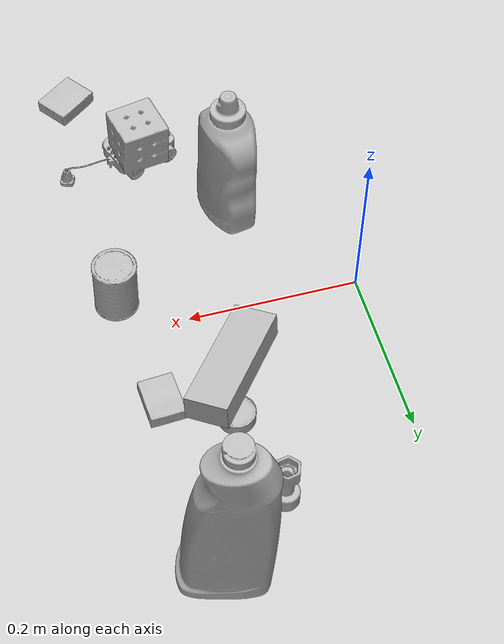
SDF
<sdf version="1.4">
  <world name="default">
    <light name="light1" type="point">
      <pose>0 0 1 0 0 0</pose>
      <diffuse>3 3 3 1</diffuse>
      <specular>3 3 3 1</specular>
    </light>
    <light name="light2" type="point">
      <pose>0 0.5 2 0 0 0</pose>
      <diffuse>1 1 1 1</diffuse>
      <specular>1 1 1 1</specular>
    </light>
    <light name="light3" type="point">
      <pose>0 0.5 2 0 0 0</pose>
      <diffuse>3 3 3 1</diffuse>
      <specular>3 3 3 1</specular>
    </light>
    <scene>
      <ambient>0.7 0.7 0.7</ambient>
    </scene>
    <model name="bottle1">
      <link name="link_bottle1">
        <collision name="default">
          <geometry>
            <mesh>
              <uri>model://mustard_bottle/collision_meshes/collision.obj</uri>
              <scale>1.0 1.0 1.0</scale>
            </mesh>
          </geometry>
          <surface>
            <friction>
              <ode>
                <mu>0.5</mu>
                <mu2>0.5</mu2>
              </ode>
            </friction>
          <contact>
        <ode>
            <max_vel>0</max_vel>
            <min_depth>0.0001</min_depth>
            <kp>1e8</kp>
        </ode>
    </contact></surface>
        </collision>
        <visual name="default">
          <geometry>
            <mesh>
              <uri>model://mustard_bottle/visual_meshes/visual.dae</uri>
              <scale>1.0 1.0 1.0</scale>
            </mesh>
          </geometry>
        </visual>
        <inertial>
          <mass>0.7866348028182983</mass>
          <pose>0.0005032454500906169 -0.00015647400869056582 -0.0174757931381464 0.00041823249995057767 0.0009465787698991903 0.02485370186883952</pose>
          <inertia>
            <ixx>0.0021843775</ixx>
            <iyy>0.0019166061</iyy>
            <izz>0.0005756938</izz>
            <ixy>0</ixy>
            <ixz>0</ixz>
            <iyz>0</iyz>
          </inertia>
        </inertial>
      </link>
      <pose>0.11343428492546082 -0.1487932950258255 0.09583090245723724 -0.012050481434520968 -0.0048900105815241094 0.17486011567692547</pose>
    </model>
    <model name="bottle2">
      <link name="link_bottle2">
        <collision name="default">
          <geometry>
            <mesh>
              <uri>model://bleach_cleanser/collision_meshes/collision.obj</uri>
              <scale>1.0 1.0 1.0</scale>
            </mesh>
          </geometry>
          <surface>
            <friction>
              <ode>
                <mu>0.5</mu>
                <mu2>0.5</mu2>
              </ode>
            </friction>
          <contact>
        <ode>
            <max_vel>0</max_vel>
            <min_depth>0.0001</min_depth>
            <kp>1e8</kp>
        </ode>
    </contact></surface>
        </collision>
        <visual name="default">
          <geometry>
            <mesh>
              <uri>model://bleach_cleanser/visual_meshes/visual.dae</uri>
              <scale>1.0 1.0 1.0</scale>
            </mesh>
          </geometry>
        </visual>
        <inertial>
          <mass>1.5776710510253906</mass>
          <pose>0.00012193183647468686 0.003783883061259985 -0.02442161552608013 -0.07381671362264838 0.0004201168949340897 -0.006875045535038288</pose>
          <inertia>
            <ixx>0.007678755</ixx>
            <iyy>0.0071554743</iyy>
            <izz>0.0013128674</izz>
            <ixy>0</ixy>
            <ixz>0</ixz>
            <iyz>0</iyz>
          </inertia>
        </inertial>
      </link>
      <pose>0.24388928711414337 0.3172166347503662 0.12576061487197876 -0.005009311641196323 0.006518254722654774 1.282855626896403</pose>
    </model>
    <model name="toy1">
      <link name="link_toy1">
        <collision name="default">
          <geometry>
            <mesh>
              <uri>model://g_lego_duplo/collision_meshes/collision.obj</uri>
              <scale>0.5 0.5 0.5</scale>
            </mesh>
          </geometry>
          <surface>
            <friction>
              <ode>
                <mu>0.5</mu>
                <mu2>0.5</mu2>
              </ode>
            </friction>
          <contact>
        <ode>
            <max_vel>0</max_vel>
            <min_depth>0.0001</min_depth>
            <kp>1e8</kp>
        </ode>
    </contact></surface>
        </collision>
        <visual name="default">
          <geometry>
            <mesh>
              <uri>model://g_lego_duplo/visual_meshes/visual.dae</uri>
              <scale>0.5 0.5 0.5</scale>
            </mesh>
          </geometry>
        </visual>
        <inertial>
          <mass>0.06580430269241333</mass>
          <pose>-0.025023844093084335 0.0008777321199886501 0.0019403373589739203 0.010962977320182745 0.038108249742412996 -0.09653031078073558</pose>
          <inertia>
            <ixx>2.3837789e-05</ixx>
            <iyy>7.206929e-05</iyy>
            <izz>9.016138e-05</izz>
            <ixy>0</ixy>
            <ixz>0</ixz>
            <iyz>0</iyz>
          </inertia>
        </inertial>
      </link>
      <pose>0.22370724380016327 -0.2493898868560791 0.015010378323495388 -0.0020352493318910756 -0.0029632012287135333 0.3607786065956698</pose>
    </model>
    <model name="toy2">
      <link name="link_toy2">
        <collision name="default">
          <geometry>
            <mesh>
              <uri>model://c_toy_airplane/collision_meshes/collision.obj</uri>
              <scale>1.0 1.0 1.0</scale>
            </mesh>
          </geometry>
          <surface>
            <friction>
              <ode>
                <mu>0.5</mu>
                <mu2>0.5</mu2>
              </ode>
            </friction>
          <contact>
        <ode>
            <max_vel>0</max_vel>
            <min_depth>0.0001</min_depth>
            <kp>1e8</kp>
        </ode>
    </contact></surface>
        </collision>
        <visual name="default">
          <geometry>
            <mesh>
              <uri>model://c_toy_airplane/visual_meshes/visual.dae</uri>
              <scale>1.0 1.0 1.0</scale>
            </mesh>
          </geometry>
        </visual>
        <inertial>
          <mass>0.012545601464807987</mass>
          <pose>-0.00023024262918625027 -4.4310368707556336e-07 -0.0060805282555520535 -0.006192226732466636 -0.01679790977646328 0.7654621556572541</pose>
          <inertia>
            <ixx>5.760684e-06</ixx>
            <iyy>5.744425e-06</iyy>
            <izz>1.3524945e-06</izz>
            <ixy>0</ixy>
            <ixz>0</ixz>
            <iyz>0</iyz>
          </inertia>
        </inertial>
      </link>
      <pose>0.16166020929813385 0.2524140179157257 0.03350812569260597 -0.0005081779435731679 -8.604966380121137e-05 -0.5760055648250431</pose>
    </model>
    <model name="can1">
      <link name="link_can1">
        <collision name="default">
          <geometry>
            <mesh>
              <uri>model://tuna_fish_can/collision_meshes/collision.obj</uri>
              <scale>0.5 0.5 0.5</scale>
            </mesh>
          </geometry>
          <surface>
            <friction>
              <ode>
                <mu>0.5</mu>
                <mu2>0.5</mu2>
              </ode>
            </friction>
          <contact>
        <ode>
            <max_vel>0</max_vel>
            <min_depth>0.0001</min_depth>
            <kp>1e8</kp>
        </ode>
    </contact></surface>
        </collision>
        <visual name="default">
          <geometry>
            <mesh>
              <uri>model://tuna_fish_can/visual_meshes/visual.dae</uri>
              <scale>0.5 0.5 0.5</scale>
            </mesh>
          </geometry>
        </visual>
        <inertial>
          <mass>0.0216250978410244</mass>
          <pose>-2.036200021393597e-05 -7.256498065544292e-06 -0.0005269024986773729 -0.0017944779234091367 0.00017161663308651613 0.24053681665098822</pose>
          <inertia>
            <ixx>2.923745e-06</ixx>
            <iyy>2.9115588e-06</iyy>
            <izz>5.002946e-06</izz>
            <ixy>0</ixy>
            <ixz>0</ixz>
            <iyz>0</iyz>
          </inertia>
        </inertial>
      </link>
      <pose>0.18373261392116547 0.1437620371580124 0.008625958114862442 0.0019010212547958102 0.00468774177568019 -0.8328131439275253</pose>
    </model>
    <model name="can2">
      <link name="link_can2">
        <collision name="default">
          <geometry>
            <mesh>
              <uri>model://master_chef_can/collision_meshes/collision.obj</uri>
              <scale>0.5 0.5 0.5</scale>
            </mesh>
          </geometry>
          <surface>
            <friction>
              <ode>
                <mu>0.5</mu>
                <mu2>0.5</mu2>
              </ode>
            </friction>
          <contact>
        <ode>
            <max_vel>0</max_vel>
            <min_depth>0.0001</min_depth>
            <kp>1e8</kp>
        </ode>
    </contact></surface>
        </collision>
        <visual name="default">
          <geometry>
            <mesh>
              <uri>model://master_chef_can/visual_meshes/visual.dae</uri>
              <scale>0.5 0.5 0.5</scale>
            </mesh>
          </geometry>
        </visual>
        <inertial>
          <mass>0.16779577732086182</mass>
          <pose>-4.661964703700505e-05 1.3926845099376806e-07 -5.080012488178909e-05 -0.001799515621871614 0.0006479176547847844 -0.610266079213139</pose>
          <inertia>
            <ixx>9.848473e-05</ixx>
            <iyy>9.77599e-05</iyy>
            <izz>5.442035e-05</izz>
            <ixy>0</ixy>
            <ixz>0</ixz>
            <iyz>0</iyz>
          </inertia>
        </inertial>
      </link>
      <pose>0.2737848460674286 -0.04312672093510628 0.03530200198292732 -1.605691193867813e-06 -1.1611370988610612e-06 2.652515228557446</pose>
    </model>
    <model name="box1">
      <link name="link_box1">
        <collision name="default">
          <geometry>
            <mesh>
              <uri>model://rubiks_cube/collision_meshes/collision.obj</uri>
              <scale>1.0 1.0 1.0</scale>
            </mesh>
          </geometry>
          <surface>
            <friction>
              <ode>
                <mu>0.5</mu>
                <mu2>0.5</mu2>
              </ode>
            </friction>
          <contact>
        <ode>
            <max_vel>0</max_vel>
            <min_depth>0.0001</min_depth>
            <kp>1e8</kp>
        </ode>
    </contact></surface>
        </collision>
        <visual name="default">
          <geometry>
            <mesh>
              <uri>model://rubiks_cube/visual_meshes/visual.dae</uri>
              <scale>1.0 1.0 1.0</scale>
            </mesh>
          </geometry>
        </visual>
        <inertial>
          <mass>0.232398122549057</mass>
          <pose>2.6721041649580002e-05 5.256967051536776e-05 -7.264316082000732e-06 -0.05467303663832053 -0.0981402329670775 -0.034454960240128486</pose>
          <inertia>
            <ixx>0.00012841556</ixx>
            <iyy>0.00012781669</iyy>
            <izz>0.00012947968</izz>
            <ixy>0</ixy>
            <ixz>0</ixz>
            <iyz>0</iyz>
          </inertia>
        </inertial>
      </link>
      <pose>0.1993190348148346 -0.23935343325138092 0.05533451959490776 0.003219404685631232 -0.0017467269048870222 -1.3880919822629485</pose>
    </model>
    <model name="box2">
      <link name="link_box2">
        <collision name="default">
          <geometry>
            <mesh>
              <uri>model://jenga/collision_meshes/collision.obj</uri>
              <scale>1.0 1.0 1.0</scale>
            </mesh>
          </geometry>
          <surface>
            <friction>
              <ode>
                <mu>0.5</mu>
                <mu2>0.5</mu2>
              </ode>
            </friction>
          <contact>
        <ode>
            <max_vel>0</max_vel>
            <min_depth>0.0001</min_depth>
            <kp>1e8</kp>
        </ode>
    </contact></surface>
        </collision>
        <visual name="default">
          <geometry>
            <mesh>
              <uri>model://jenga/visual_meshes/visual.dae</uri>
              <scale>1.0 1.0 1.0</scale>
            </mesh>
          </geometry>
        </visual>
        <inertial>
          <mass>0.2088489830493927</mass>
          <pose>-2.502855807051674e-07 -0.0001025000965455547 -4.092339804628864e-05 0.0 -7.342154049184251e-07 0.0</pose>
          <inertia>
            <ixx>5.7793575e-05</ixx>
            <iyy>0.00039160773</iyy>
            <izz>0.00041807455</izz>
            <ixy>0</ixy>
            <ixz>0</ixz>
            <iyz>0</iyz>
          </inertia>
        </inertial>
      </link>
      <pose>0.17472805082798004 0.09096203744411469 0.026780903339385986 -0.11467377436001533 0.12502995544893059 -2.225501452237936</pose>
    </model>
    <model name="box3">
      <link name="link_box3">
        <collision name="default">
          <geometry>
            <mesh>
              <uri>model://cracker_box/collision_meshes/collision.obj</uri>
              <scale>0.25 0.25 0.25</scale>
            </mesh>
          </geometry>
          <surface>
            <friction>
              <ode>
                <mu>0.5</mu>
                <mu2>0.5</mu2>
              </ode>
            </friction>
          <contact>
        <ode>
            <max_vel>0</max_vel>
            <min_depth>0.0001</min_depth>
            <kp>1e8</kp>
        </ode>
    </contact></surface>
        </collision>
        <visual name="default">
          <geometry>
            <mesh>
              <uri>model://cracker_box/visual_meshes/visual.dae</uri>
              <scale>0.25 0.25 0.25</scale>
            </mesh>
          </geometry>
        </visual>
        <inertial>
          <mass>0.039105094969272614</mass>
          <pose>0.00023660340229980648 6.358561222441494e-05 -0.00042573834070935845 -0.0003162078884583708 -0.011106488668689832 0.0025467950032832675</pose>
          <inertia>
            <ixx>6.216619e-06</ixx>
            <iyy>1.0264859e-05</iyy>
            <izz>1.4648894e-05</izz>
            <ixy>0</ixy>
            <ixz>0</ixz>
            <iyz>0</iyz>
          </inertia>
        </inertial>
      </link>
      <pose>0.2575214207172394 0.10338632762432098 0.009120450355112553 -0.011788033977457703 -0.007367164602276421 -1.5165932488109635</pose>
    </model>
    <model name="box4">
      <link name="link_box4">
        <collision name="default">
          <geometry>
            <mesh>
              <uri>model://pudding_box/collision_meshes/collision.obj</uri>
              <scale>0.5 0.5 0.5</scale>
            </mesh>
          </geometry>
          <surface>
            <friction>
              <ode>
                <mu>0.5</mu>
                <mu2>0.5</mu2>
              </ode>
            </friction>
          <contact>
        <ode>
            <max_vel>0</max_vel>
            <min_depth>0.0001</min_depth>
            <kp>1e8</kp>
        </ode>
    </contact></surface>
        </collision>
        <visual name="default">
          <geometry>
            <mesh>
              <uri>model://pudding_box/visual_meshes/visual.dae</uri>
              <scale>0.5 0.5 0.5</scale>
            </mesh>
          </geometry>
        </visual>
        <inertial>
          <mass>0.03813362866640091</mass>
          <pose>0.00024474109522998333 0.00040339428232982755 -0.0002594413817860186 0.005213101815861678 -0.006603796390356506 0.020079825165494957</pose>
          <inertia>
            <ixx>1.0777026e-05</ixx>
            <iyy>7.25086e-06</iyy>
            <izz>1.5915095e-05</izz>
            <ixy>0</ixy>
            <ixz>0</ixz>
            <iyz>0</iyz>
          </inertia>
        </inertial>
      </link>
      <pose>0.264981210231781 -0.36241400241851807 0.009862901642918587 0.022348546363057612 -0.011391685712640534 2.178689068767972</pose>
    </model>
  <physics type="ode">
      <max_contacts>50</max_contacts>
      <ode>
        <solver>
          <type>quick</type>
          <iters>75</iters>
        </solver>
        <constraints>
          <contact_max_correcting_vel>0</contact_max_correcting_vel>
          <contact_surface_layer>0</contact_surface_layer>
        </constraints>
      </ode>
    </physics></world>
</sdf>
